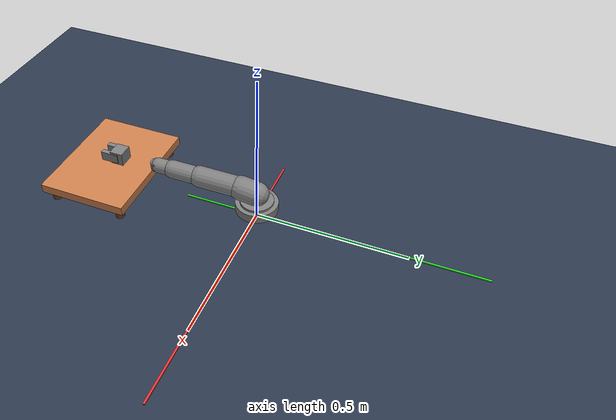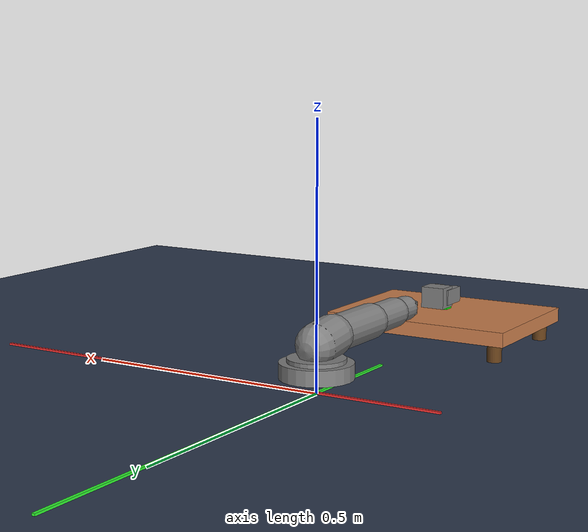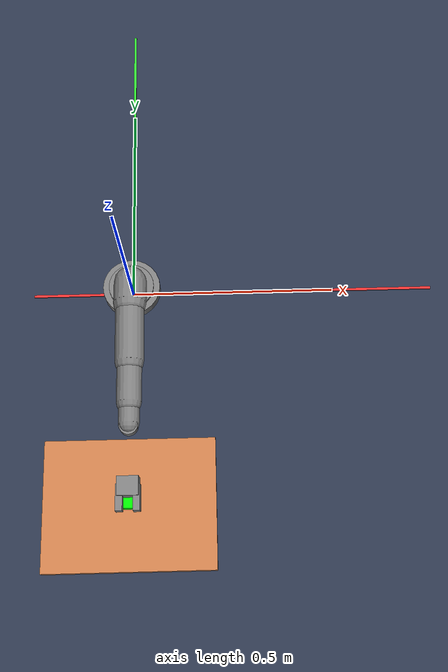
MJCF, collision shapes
<mujoco model="UPOOSTUDIO_机械臂_1.5KG">
  <compiler angle="radian" autolimits="true"
             meshdir="../meshes"/>
  <option timestep="0.002" gravity="0 0 -9.81" integrator="implicitfast"/>

  <default>
    <joint limited="true" damping="0.8" armature="0.01"/>
    <geom contype="1" conaffinity="1" condim="6"
          solref="0.02 1" solimp="0.9 0.95 0.001"
          friction="1.5 0.3 0.05"/>
    <default class="visual">
      <geom contype="0" conaffinity="0" group="2"/>
    </default>
    <default class="collision">
      <geom contype="1" conaffinity="1" group="3"
            condim="6" solref="0.02 1" solimp="0.9 0.95 0.001"
            friction="1.5 0.3 0.05"/>
    </default>
    <default class="gripper">
      <geom contype="1" conaffinity="1" group="3"
            condim="6" solref="0.02 1" solimp="0.9 0.95 0.001"
            friction="5.0 1.0 0.1"/>
    </default>
    <default class="floor">
      <geom contype="1" conaffinity="1" condim="3"
            solref="0.02 1" solimp="0.9 0.95 0.001"
            friction="0.5 0.01 0.01"/>
    </default>
  </default>

  <asset>
    <texture name="grid_tex" type="2d" builtin="checker" width="256" height="256"
             rgb1="0.15 0.18 0.25" rgb2="0.2 0.25 0.35"/>
    <material name="grid_mat" texture="grid_tex" texrepeat="6 6" reflectance="0.05"/>

    <!-- UPOO 连杆 STL 网格 -->
    <mesh name="mesh_base_link" file="base_link.STL"/>
    <mesh name="mesh_Link_01"   file="Link_01.STL"/>
    <mesh name="mesh_Link_02"   file="Link_02.STL"/>
    <mesh name="mesh_Link_03"   file="Link_03.STL"/>
    <mesh name="mesh_Link_04"   file="Link_04.STL"/>
    <mesh name="mesh_Link_05"   file="Link_05.STL"/>
    <mesh name="mesh_link6_wrist"  file="link6_wrist.STL"/>
    <mesh name="mesh_finger_upper" file="finger_upper.STL"/>
    <mesh name="mesh_finger_lower" file="finger_lower.STL"/>
  </asset>

  <!-- ============================================================
       世界环境
       ============================================================ -->
  <worldbody>
    <light name="sun" directional="true" diffuse="0.7 0.7 0.7" specular="0.3 0.3 0.3"
           pos="2 1 3" dir="-1 -0.3 -1" castshadow="true"/>

    <geom name="floor" type="plane" size="0 0 0.05" pos="0 0 0"
          material="grid_mat" class="floor"/>

    <!-- +X 红轴, +Y 绿轴 -->
    <geom name="axis_x" type="box" size="0.5 0.003 0.002" pos="0.25 0 0.002" rgba="1 0.2 0.2 0.9" contype="0" conaffinity="0"/>
    <geom name="axis_y" type="box" size="0.003 0.5 0.002" pos="0 0.25 0.002" rgba="0.2 1 0.2 0.9" contype="0" conaffinity="0"/>

    <!-- 桌子 (放在机械臂前方 -Y 方向, 桌面高 5cm) -->
    <body name="table" pos="0.0 -0.53 0.05">
      <geom name="table_top" type="box" size="0.2 0.15 0.015" rgba="0.8 0.5 0.3 1"
            contype="1" conaffinity="1"/>
      <geom name="table_leg1" type="cylinder" size="0.015 0.05" pos="-0.17 -0.12 -0.06" rgba="0.4 0.25 0.1 1"
            contype="1" conaffinity="1"/>
      <geom name="table_leg2" type="cylinder" size="0.015 0.05" pos="-0.17  0.12 -0.06" rgba="0.4 0.25 0.1 1"
            contype="1" conaffinity="1"/>
      <geom name="table_leg3" type="cylinder" size="0.015 0.05" pos=" 0.17 -0.12 -0.06" rgba="0.4 0.25 0.1 1"
            contype="1" conaffinity="1"/>
      <geom name="table_leg4" type="cylinder" size="0.015 0.05" pos=" 0.17  0.12 -0.06" rgba="0.4 0.25 0.1 1"
            contype="1" conaffinity="1"/>
    </body>

    <!-- 抓取目标: 24mm 绿色正方体, 放在桌面上 -->
    <body name="cube" pos="0.0 -0.53 0.08">
      <freejoint/>
      <geom name="cube_geom" type="box" size="0.012 0.012 0.012" mass="0.05"
            rgba="0 1 0 1" contype="1" conaffinity="1" friction="3.0 0.8 0.1"/>
    </body>

    <!-- ============================================================
         UPOO 机械臂 6-DOF (base_link → Link_01~06)
         ============================================================ -->

    <body name="base_link" pos="0 0 0.05">
      <geom name="base_vis" type="mesh" mesh="mesh_base_link" rgba="0.35 0.35 0.45 1" class="visual"/>
      <geom name="base_col" type="cylinder" size="0.07 0.015" pos="0 0 -0.005" class="collision"/>

      <!-- J1: 基座旋转 (Z 轴) -->
      <body name="Link_01" pos="0 0 0">
        <joint name="Base_J01" type="hinge" axis="0 0 -1" range="-2.82 2.82"/>
        <geom name="L1_vis" type="mesh" mesh="mesh_Link_01" rgba="0.4 0.4 0.48 1" class="visual"/>
        <geom name="L1_col" type="cylinder" size="0.055 0.018" class="collision" mass="0.351"/>

        <!-- J2: 肩部俯仰 (X 轴) -->
        <body name="Link_02" pos="0 0 0.04176">
          <joint name="J02" type="hinge" axis="1 0 0" range="-3.14 0"/>
          <geom name="L2_vis" type="mesh" mesh="mesh_Link_02" rgba="0.45 0.45 0.53 1" class="visual"/>
          <geom name="L2_col" type="capsule" size="0.04" fromto="0 0 0 0 -0.055 0.007" class="collision" mass="0.672"/>

          <!-- J3: 肘部俯仰 (Y 轴) -->
          <body name="Link_03" pos="0 -0.06025 0.00774">
            <joint name="J03" type="hinge" axis="0 1 0" range="-1.57 1.57"/>
            <geom name="L3_vis" type="mesh" mesh="mesh_Link_03" rgba="0.5 0.5 0.58 1" class="visual"/>
            <geom name="L3_col" type="capsule" size="0.035" fromto="0 0 0 0 -0.14 0" class="collision" mass="0.760"/>

            <!-- J4: 腕部旋转 (Z 轴) -->
            <body name="Link_04" pos="0 -0.1535 0">
              <joint name="J04" type="hinge" axis="0 0 1" range="-0.78 2.6"/>
              <geom name="L4_vis" type="mesh" mesh="mesh_Link_04" rgba="0.55 0.55 0.63 1" class="visual"/>
              <geom name="L4_col" type="capsule" size="0.03" fromto="0 0 0 0 -0.085 0" class="collision" mass="0.550"/>

              <!-- J5: 腕部俯仰 (Y 轴反转) -->
              <body name="Link_05" pos="0 -0.0955 0">
                <joint name="J05" type="hinge" axis="0 -1 0" range="-1.57 1.57"/>
                <geom name="L5_vis" type="mesh" mesh="mesh_Link_05" rgba="0.6 0.6 0.68 1" class="visual"/>
                <geom name="L5_col" type="capsule" size="0.025" fromto="0 0 0 0 -0.04 0" class="collision" mass="0.476"/>

                <!-- J6: 末端旋转 (X 轴) + 平行二指夹爪 -->
                <body name="Link_06" pos="0 -0.0455 0">
                  <joint name="J06" type="hinge" axis="1 0 0" range="-1.57 1.57"/>
                  <!-- 腕部视觉 (不含手指的 STL) -->
                  <geom name="L6_vis" type="mesh" mesh="mesh_link6_wrist" rgba="0.65 0.65 0.73 1" class="visual"/>
                  <geom name="L6_col" type="cylinder" size="0.022 0.012" class="collision" mass="0.773"/>

                  <!-- 夹爪基座 (连接腕部与手指) -->
                  <geom name="gripper_base_vis" type="box" size="0.018 0.015 0.015" pos="0 -0.14 0" rgba="0.3 0.3 0.35 1" class="visual"/>
                  <geom name="gripper_base_col" type="box" size="0.025 0.022 0.022" pos="0 -0.14 0" class="gripper" mass="0.08"/>

                  <!-- 左指 (-X 侧, 向 +X 滑动闭合) -->
                  <body name="finger_left" pos="-0.02 -0.165 0">
                    <joint name="upoo_finger_left" type="slide" axis="1 0 0" range="0 0.015"/>
                    <geom name="finger_left_vis" type="box" size="0.005 0.025 0.012" rgba="0.9 0.4 0.2 1" class="visual"/>
                    <geom name="finger_left_col" type="box" size="0.008 0.030 0.016" class="gripper" mass="0.03"/>
                  </body>

                  <!-- 右指 (+X 侧, 向 -X 滑动闭合) -->
                  <body name="finger_right" pos="0.02 -0.165 0">
                    <joint name="upoo_finger_right" type="slide" axis="-1 0 0" range="0 0.015"/>
                    <geom name="finger_right_vis" type="box" size="0.005 0.025 0.012" rgba="0.9 0.4 0.2 1" class="visual"/>
                    <geom name="finger_right_col" type="box" size="0.008 0.030 0.016" class="gripper" mass="0.03"/>
                  </body>

                </body>  <!-- Link_06 -->
              </body>  <!-- Link_05 -->
            </body>  <!-- Link_04 -->
          </body>  <!-- Link_03 -->
        </body>  <!-- Link_02 -->
      </body>  <!-- Link_01 -->
    </body>  <!-- base_link -->
  </worldbody>

  <tendon>
    <fixed name="split">
      <joint joint="upoo_finger_left" coef="0.5"/>
      <joint joint="upoo_finger_right" coef="0.5"/>
    </fixed>
  </tendon>
  <equality>
    <joint joint1="upoo_finger_left" joint2="upoo_finger_right" solimp="0.95 0.99 0.001" solref="0.005 1"/>
  </equality>

  <!-- ============================================================
       执行器 (位置控制)
       ============================================================ -->
  <actuator>
    <position name="Base_J01" joint="Base_J01" kp="500" kv="60" ctrllimited="true" ctrlrange="-2.82 2.82" forcerange="-20 20"/>
    <position name="J02"       joint="J02"       kp="1000" kv="60" ctrllimited="true" ctrlrange="-3.14 0" forcerange="-25 25"/>
    <position name="J03"       joint="J03"       kp="150" kv="30" ctrllimited="true" ctrlrange="-1.57 1.57" forcerange="-30 30"/>
    <position name="J04"       joint="J04"       kp="100" kv="20" ctrllimited="true" ctrlrange="-0.78 2.6" forcerange="-10 10"/>
    <position name="J05"       joint="J05"       kp="100" kv="20" ctrllimited="true" ctrlrange="-1.57 1.57" forcerange="-10 10"/>
    <position name="J06"       joint="J06"       kp="80"  kv="15" ctrllimited="true" ctrlrange="-1.57 1.57" forcerange="-8 8"/>
    <position name="finger_left_ctrl"  joint="upoo_finger_left"  kp="1000" kv="10" ctrllimited="true" ctrlrange="0 0.015" forcerange="-30 30"/>
    <position name="finger_right_ctrl" joint="upoo_finger_right" kp="1000" kv="10" ctrllimited="true" ctrlrange="0 0.015" forcerange="-30 30"/>
  </actuator>

  <!-- home keyframe: cube(7) + arm_joints(6) + fingers(2) = 15 -->
  <keyframe>
    <key name="home"
         qpos="0.0 -0.53 0.08 1 0 0 0  0 0 0 0 0 0  0 0"/>
  </keyframe>
</mujoco>
